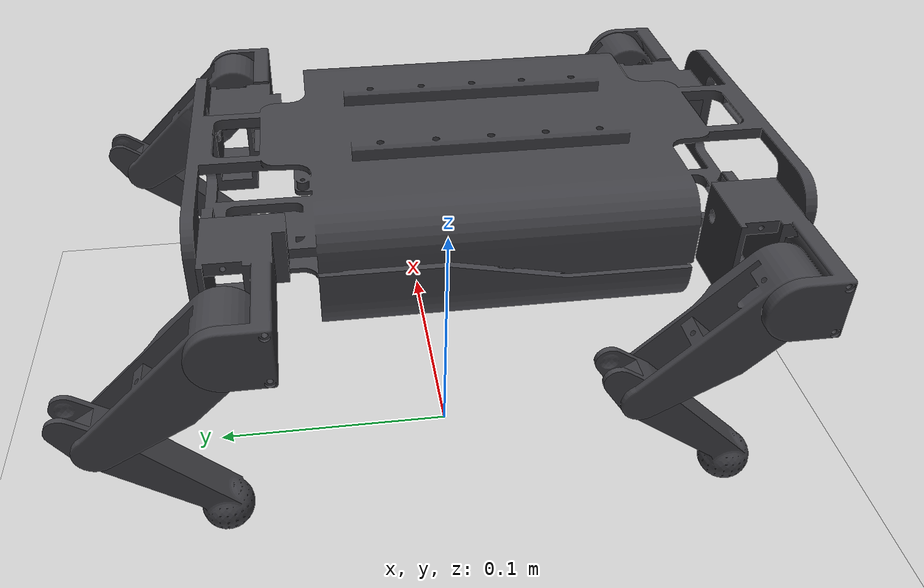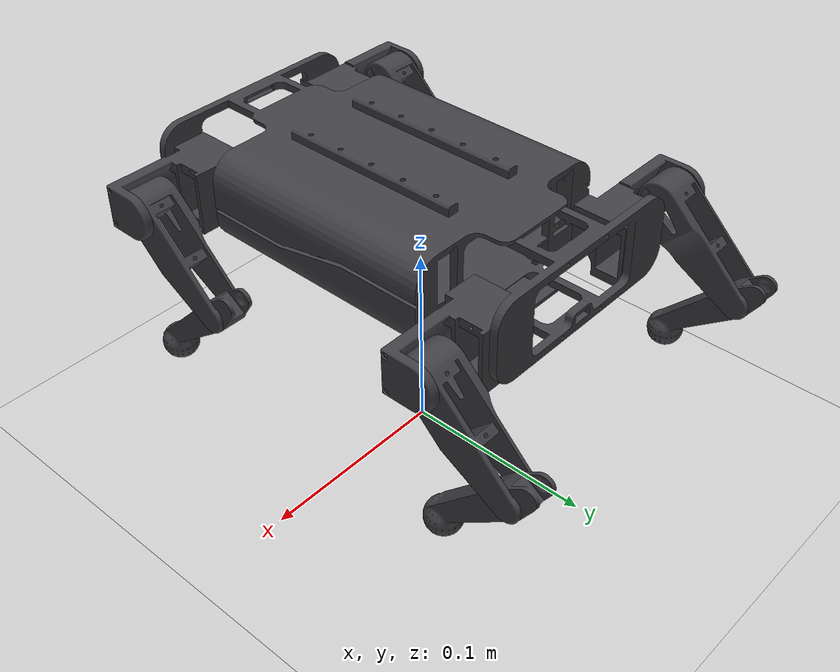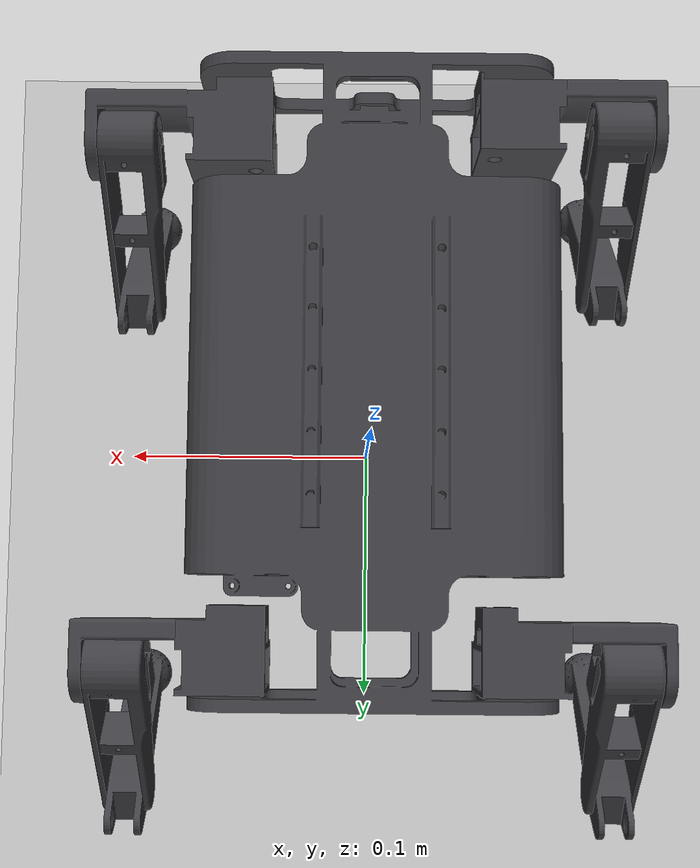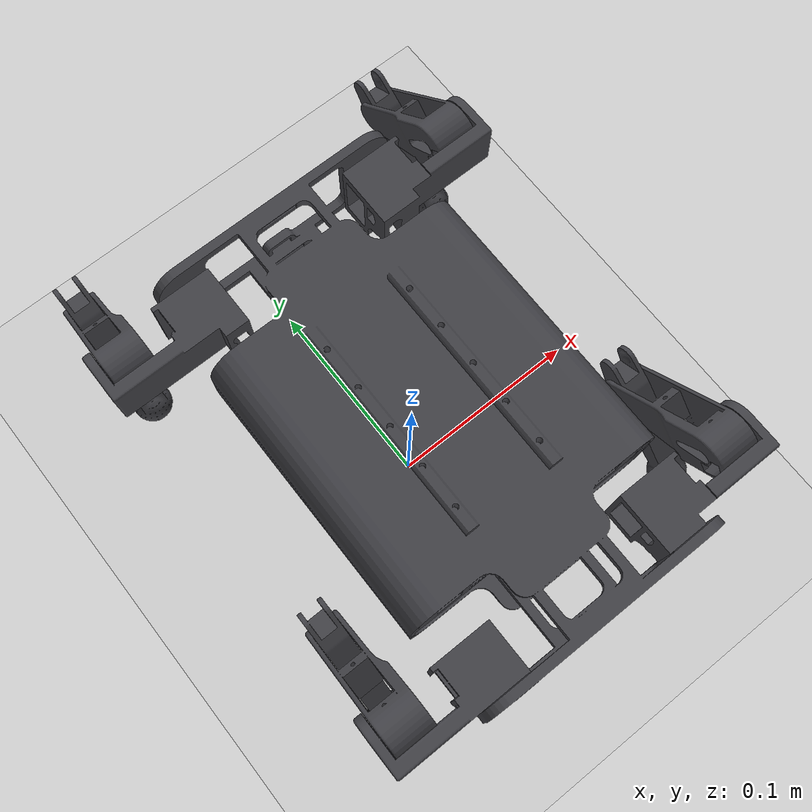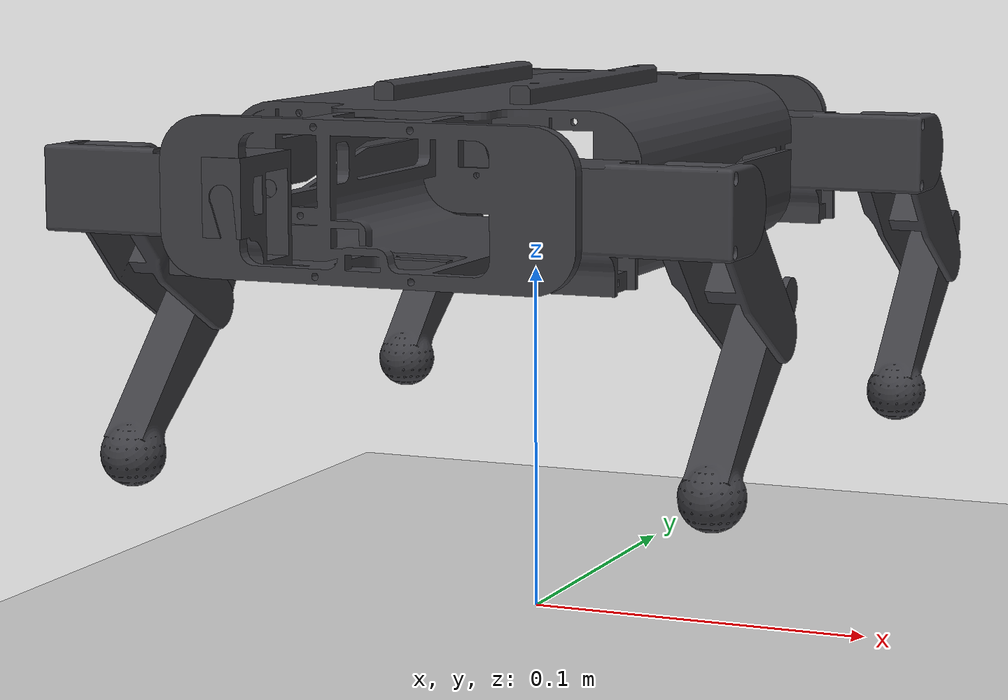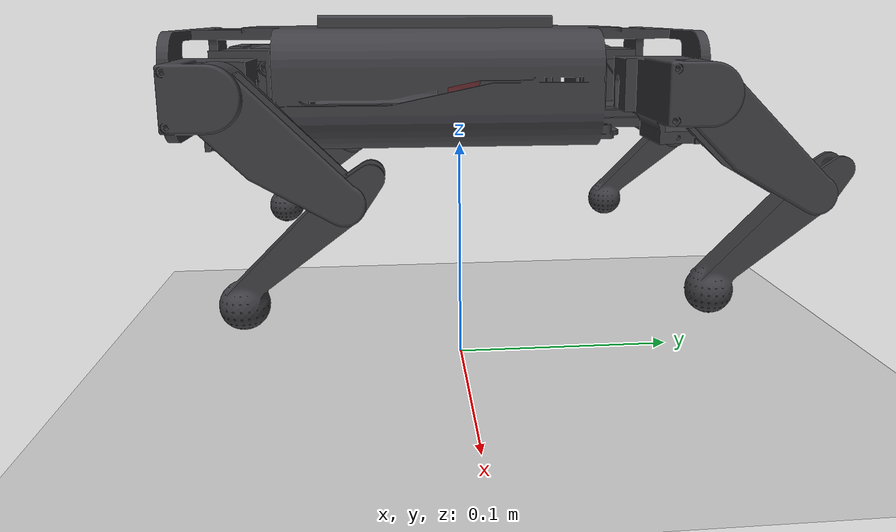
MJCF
<mujoco model="spot_pico">
  <option timestep="0.002" iterations="50" solver="Newton"/>
  <default><geom conaffinity="0"/></default>
  <compiler angle="radian" meshdir="meshes/"/>

  <asset>
    <mesh name="base_link" file="base_link.stl"/>
    <mesh name="fr_tibia" file="fr_tibia.stl"/>
    <mesh name="fr_femur" file="fr_femur.stl"/>
    <mesh name="fr_coxa" file="fr_coxa.stl"/>
    <mesh name="fl_tibia" file="fl_tibia.stl"/>
    <mesh name="fl_femur" file="fl_femur.stl"/>
    <mesh name="fl_coxa" file="fl_coxa.stl"/>
    <mesh name="rr_tibia" file="rr_tibia.stl"/>
    <mesh name="rr_femur" file="rr_femur.stl"/>
    <mesh name="rr_coxa" file="rr_coxa.stl"/>
    <mesh name="rl_tibia" file="rl_tibia.stl"/>
    <mesh name="rl_femur" file="rl_femur.stl"/>
    <mesh name="rl_coxa" file="rl_coxa.stl"/>
  </asset>

  <worldbody>
    <light pos="0 0 1.5" dir="0 0 -1" directional="true"/>
    <geom name="floor" type="plane" contype="1" conaffinity="1" size="0 0 0.05" rgba="0.8 0.8 0.8 1"/>
    <body name="base_link" pos="0 0 0.13">
      <freejoint name="root"/>
      <site name="imu" pos="0 0 0" size="0.01" rgba="1 0 0 0.3"/>
      <inertial pos="0.000337 -0.010367 0.000363" quat="0.505214 0.49863 -0.49994 0.496173" mass="0.33629" diaginertia="0.0013827 0.00110394 0.000394446"/>
      <geom type="mesh" contype="0" conaffinity="0" group="1" density="0" rgba="0.25 0.25 0.27 1" mesh="base_link"/>
      <geom type="mesh" rgba="0.25 0.25 0.27 1" mesh="base_link"/>
      <body name="fr_coxa" pos="-0.039922 -0.099805 5.8e-05">
        <inertial pos="-0.018943 -0.001678 -0.002859" quat="0.429206 0.553943 0.50624 0.502643" mass="0.043888" diaginertia="1.06239e-05 8.70681e-06 4.59932e-06"/>
        <joint name="fr_hip_joint" pos="0 0 0" axis="0 -1 0" range="-1.48353 1.48353" actuatorfrcrange="-0.34 0.34" damping="0.01" frictionloss="0.02"/>
        <geom pos="0.039922 0.099805 -5.8e-05" quat="1 0 0 0" type="mesh" contype="0" conaffinity="0" group="1" density="0" rgba="0.25 0.25 0.27 1" mesh="fr_coxa"/>
        <geom pos="0.039922 0.099805 -5.8e-05" quat="1 0 0 0" type="mesh" rgba="0.25 0.25 0.27 1" mesh="fr_coxa"/>
        <body name="fr_femur" pos="-0.0513 0.004305 0">
          <inertial pos="0.00916 0.013089 -0.011265" quat="0.628961 0.281704 -0.280076 0.668288" mass="0.010998" diaginertia="5.01423e-06 4.95224e-06 8.63526e-07"/>
          <joint name="fr_femur_joint" pos="0 0 0" axis="-1 0 0" range="-2.35619 0.7854" actuatorfrcrange="-0.34 0.34" damping="0.01" frictionloss="0.02"/>
          <geom pos="0.091222 0.0955 -5.8e-05" quat="1 0 0 0" type="mesh" contype="0" conaffinity="0" group="1" density="0" rgba="0.25 0.25 0.27 1" mesh="fr_femur"/>
          <geom pos="0.091222 0.0955 -5.8e-05" quat="1 0 0 0" type="mesh" rgba="0.25 0.25 0.27 1" mesh="fr_femur"/>
          <body name="fr_tibia" pos="0.00215 0.043903 -0.037783">
            <inertial pos="0.006 -0.019087 -0.01787" quat="0.386755 0.922182 0 0" mass="0.011568" diaginertia="5.45e-06 5.4354e-06 3.34603e-07"/>
            <joint name="fr_tibia_joint" pos="0 0 0" axis="-1 0 0" range="-1.0472 0.95993" actuatorfrcrange="-0.21 0.21" damping="0.01" frictionloss="0.02"/>
            <geom pos="0.089072 0.051597 0.037725" quat="1 0 0 0" type="mesh" contype="0" conaffinity="0" group="1" density="0" rgba="0.25 0.25 0.27 1" mesh="fr_tibia"/>
            <geom name="foot_fr" size="0.009" pos="0.006 -0.037123 -0.037123" contype="1" conaffinity="1" rgba="0.25 0.25 0.27 1"/>
            <site name="foot_fr" pos="0.006 -0.037123 -0.037123" size="0.004" rgba="0 1 0 0.4"/>
          </body>
        </body>
      </body>
      <body name="fl_coxa" pos="0.040078 -0.095155 5.8e-05">
        <inertial pos="0.018498 -0.00219 -0.002737" quat="0.495054 0.505705 0.429678 0.560857" mass="0.044625" diaginertia="1.07388e-05 8.88157e-06 4.73961e-06"/>
        <joint name="fl_hip_joint" pos="0 0 0" axis="0 1 0" range="-1.48353 1.48353" actuatorfrcrange="-0.34 0.34" damping="0.01" frictionloss="0.02"/>
        <geom pos="-0.040078 0.095155 -5.8e-05" quat="1 0 0 0" type="mesh" contype="0" conaffinity="0" group="1" density="0" rgba="0.25 0.25 0.27 1" mesh="fl_coxa"/>
        <geom pos="-0.040078 0.095155 -5.8e-05" quat="1 0 0 0" type="mesh" rgba="0.25 0.25 0.27 1" mesh="fl_coxa"/>
        <body name="fl_femur" pos="0.0516 0.004305 0">
          <inertial pos="-0.00916 0.013089 -0.011265" quat="0.668288 0.280076 -0.281704 0.628961" mass="0.010998" diaginertia="5.01423e-06 4.95224e-06 8.63526e-07"/>
          <joint name="fl_femur_joint" pos="0 0 0" axis="-1 0 0" range="-1.5708 1.5708" actuatorfrcrange="-0.34 0.34" damping="0.01" frictionloss="0.02"/>
          <geom pos="-0.091678 0.09085 -5.8e-05" quat="1 0 0 0" type="mesh" contype="0" conaffinity="0" group="1" density="0" rgba="0.25 0.25 0.27 1" mesh="fl_femur"/>
          <geom pos="-0.091678 0.09085 -5.8e-05" quat="1 0 0 0" type="mesh" rgba="0.25 0.25 0.27 1" mesh="fl_femur"/>
          <body name="fl_tibia" pos="-0.0143 0.043903 -0.037783">
            <inertial pos="0.006 -0.019087 -0.01787" quat="0.386755 0.922182 0 0" mass="0.011568" diaginertia="5.45e-06 5.4354e-06 3.34603e-07"/>
            <joint name="fl_tibia_joint" pos="0 0 0" axis="1 0 0" range="-0.95993 0.7854" actuatorfrcrange="-0.21 0.21" damping="0.01" frictionloss="0.02"/>
            <geom pos="-0.077378 0.046947 0.037725" quat="1 0 0 0" type="mesh" contype="0" conaffinity="0" group="1" density="0" rgba="0.25 0.25 0.27 1" mesh="fl_tibia"/>
            <geom name="foot_fl" size="0.009" pos="0.006 -0.037123 -0.037123" contype="1" conaffinity="1" rgba="0.25 0.25 0.27 1"/>
            <site name="foot_fl" pos="0.006 -0.037123 -0.037123" size="0.004" rgba="0 1 0 0.4"/>
          </body>
        </body>
      </body>
      <body name="rr_coxa" pos="-0.039922 0.077545 5.8e-05">
        <inertial pos="-0.018943 -0.001678 -0.002859" quat="0.429206 0.553943 0.50624 0.502643" mass="0.043888" diaginertia="1.06239e-05 8.70681e-06 4.59932e-06"/>
        <joint name="rr_hip_joint" pos="0 0 0" axis="0 -1 0" range="-1.48353 1.48353" actuatorfrcrange="-0.34 0.34" damping="0.01" frictionloss="0.02"/>
        <geom pos="0.039922 -0.077545 -5.8e-05" quat="1 0 0 0" type="mesh" contype="0" conaffinity="0" group="1" density="0" rgba="0.25 0.25 0.27 1" mesh="rr_coxa"/>
        <geom pos="0.039922 -0.077545 -5.8e-05" quat="1 0 0 0" type="mesh" rgba="0.25 0.25 0.27 1" mesh="rr_coxa"/>
        <body name="rr_femur" pos="-0.0513 0.004305 0">
          <inertial pos="0.00916 0.013089 -0.011265" quat="0.628961 0.281704 -0.280076 0.668288" mass="0.010998" diaginertia="5.01423e-06 4.95224e-06 8.63526e-07"/>
          <joint name="rr_femur_joint" pos="0 0 0" axis="-1 0 0" range="-2.35619 0.7854" actuatorfrcrange="-0.34 0.34" damping="0.01" frictionloss="0.02"/>
          <geom pos="0.091222 -0.08185 -5.8e-05" quat="1 0 0 0" type="mesh" contype="0" conaffinity="0" group="1" density="0" rgba="0.25 0.25 0.27 1" mesh="rr_femur"/>
          <geom pos="0.091222 -0.08185 -5.8e-05" quat="1 0 0 0" type="mesh" rgba="0.25 0.25 0.27 1" mesh="rr_femur"/>
          <body name="rr_tibia" pos="0.00215 0.043903 -0.037783">
            <inertial pos="0.006 -0.019087 -0.01787" quat="0.386755 0.922182 0 0" mass="0.011568" diaginertia="5.45e-06 5.4354e-06 3.34603e-07"/>
            <joint name="rr_tibia_joint" pos="0 0 0" axis="-1 0 0" range="-1.0472 0.95993" actuatorfrcrange="-0.21 0.21" damping="0.01" frictionloss="0.02"/>
            <geom pos="0.089072 -0.125753 0.037725" quat="1 0 0 0" type="mesh" contype="0" conaffinity="0" group="1" density="0" rgba="0.25 0.25 0.27 1" mesh="rr_tibia"/>
            <geom name="foot_rr" size="0.009" pos="0.006 -0.037123 -0.037123" contype="1" conaffinity="1" rgba="0.25 0.25 0.27 1"/>
            <site name="foot_rr" pos="0.006 -0.037123 -0.037123" size="0.004" rgba="0 1 0 0.4"/>
          </body>
        </body>
      </body>
      <body name="rl_coxa" pos="0.040078 0.077545 5.8e-05">
        <inertial pos="0.018498 -0.00219 -0.002737" quat="0.495054 0.505705 0.429678 0.560857" mass="0.044625" diaginertia="1.07388e-05 8.88157e-06 4.73961e-06"/>
        <joint name="rl_hip_joint" pos="0 0 0" axis="0 1 0" range="-1.48353 1.48353" actuatorfrcrange="-0.34 0.34" damping="0.01" frictionloss="0.02"/>
        <geom pos="-0.040078 -0.077545 -5.8e-05" quat="1 0 0 0" type="mesh" contype="0" conaffinity="0" group="1" density="0" rgba="0.25 0.25 0.27 1" mesh="rl_coxa"/>
        <geom pos="-0.040078 -0.077545 -5.8e-05" quat="1 0 0 0" type="mesh" rgba="0.25 0.25 0.27 1" mesh="rl_coxa"/>
        <body name="rl_femur" pos="0.0516 0.004305 0">
          <inertial pos="-0.00916 0.013089 -0.011265" quat="0.668288 0.280076 -0.281704 0.628961" mass="0.010998" diaginertia="5.01423e-06 4.95224e-06 8.63526e-07"/>
          <joint name="rl_femur_joint" pos="0 0 0" axis="-1 0 0" range="-1.5708 1.5708" actuatorfrcrange="-0.34 0.34" damping="0.01" frictionloss="0.02"/>
          <geom pos="-0.091678 -0.08185 -5.8e-05" quat="1 0 0 0" type="mesh" contype="0" conaffinity="0" group="1" density="0" rgba="0.25 0.25 0.27 1" mesh="rl_femur"/>
          <geom pos="-0.091678 -0.08185 -5.8e-05" quat="1 0 0 0" type="mesh" rgba="0.25 0.25 0.27 1" mesh="rl_femur"/>
          <body name="rl_tibia" pos="-0.0143 0.043903 -0.037783">
            <inertial pos="0.006 -0.019087 -0.01787" quat="0.386755 0.922182 0 0" mass="0.011568" diaginertia="5.45e-06 5.4354e-06 3.34603e-07"/>
            <joint name="rl_tibia_joint" pos="0 0 0" axis="1 0 0" range="-0.95993 0.7854" actuatorfrcrange="-0.21 0.21" damping="0.01" frictionloss="0.02"/>
            <geom pos="-0.077378 -0.125753 0.037725" quat="1 0 0 0" type="mesh" contype="0" conaffinity="0" group="1" density="0" rgba="0.25 0.25 0.27 1" mesh="rl_tibia"/>
            <geom name="foot_rl" size="0.009" pos="0.006 -0.037123 -0.037123" contype="1" conaffinity="1" rgba="0.25 0.25 0.27 1"/>
            <site name="foot_rl" pos="0.006 -0.037123 -0.037123" size="0.004" rgba="0 1 0 0.4"/>
          </body>
        </body>
      </body>
    </body>
  </worldbody>

  <actuator>
    <position name="fr_hip_joint" joint="fr_hip_joint" kp="4.0" dampratio="1" ctrlrange="-1.4835 1.4835" forcerange="-0.34 0.34"/>
    <position name="fr_femur_joint" joint="fr_femur_joint" kp="4.0" dampratio="1" ctrlrange="-2.3562 0.7854" forcerange="-0.34 0.34"/>
    <position name="fr_tibia_joint" joint="fr_tibia_joint" kp="4.0" dampratio="1" ctrlrange="-1.0472 0.9599" forcerange="-0.34 0.34"/>
    <position name="fl_hip_joint" joint="fl_hip_joint" kp="4.0" dampratio="1" ctrlrange="-1.4835 1.4835" forcerange="-0.34 0.34"/>
    <position name="fl_femur_joint" joint="fl_femur_joint" kp="4.0" dampratio="1" ctrlrange="-1.5708 1.5708" forcerange="-0.34 0.34"/>
    <position name="fl_tibia_joint" joint="fl_tibia_joint" kp="4.0" dampratio="1" ctrlrange="-0.9599 0.7854" forcerange="-0.34 0.34"/>
    <position name="rr_hip_joint" joint="rr_hip_joint" kp="4.0" dampratio="1" ctrlrange="-1.4835 1.4835" forcerange="-0.34 0.34"/>
    <position name="rr_femur_joint" joint="rr_femur_joint" kp="4.0" dampratio="1" ctrlrange="-2.3562 0.7854" forcerange="-0.34 0.34"/>
    <position name="rr_tibia_joint" joint="rr_tibia_joint" kp="4.0" dampratio="1" ctrlrange="-1.0472 0.9599" forcerange="-0.34 0.34"/>
    <position name="rl_hip_joint" joint="rl_hip_joint" kp="4.0" dampratio="1" ctrlrange="-1.4835 1.4835" forcerange="-0.34 0.34"/>
    <position name="rl_femur_joint" joint="rl_femur_joint" kp="4.0" dampratio="1" ctrlrange="-1.5708 1.5708" forcerange="-0.34 0.34"/>
    <position name="rl_tibia_joint" joint="rl_tibia_joint" kp="4.0" dampratio="1" ctrlrange="-0.9599 0.7854" forcerange="-0.34 0.34"/>
  </actuator>

  <sensor>
    <framequat name="imu_quat" objtype="site" objname="imu"/>
    <gyro name="imu_gyro" site="imu"/>
    <accelerometer name="imu_acc" site="imu"/>
  </sensor>
</mujoco>
